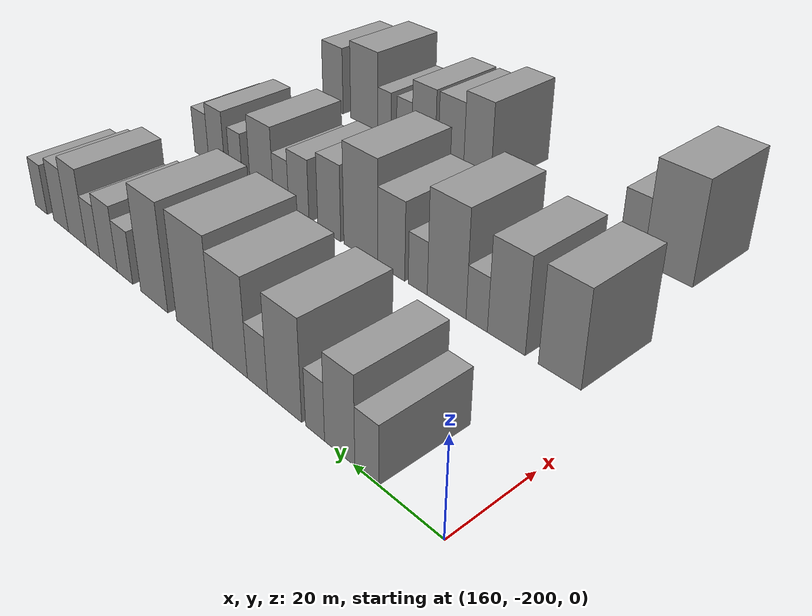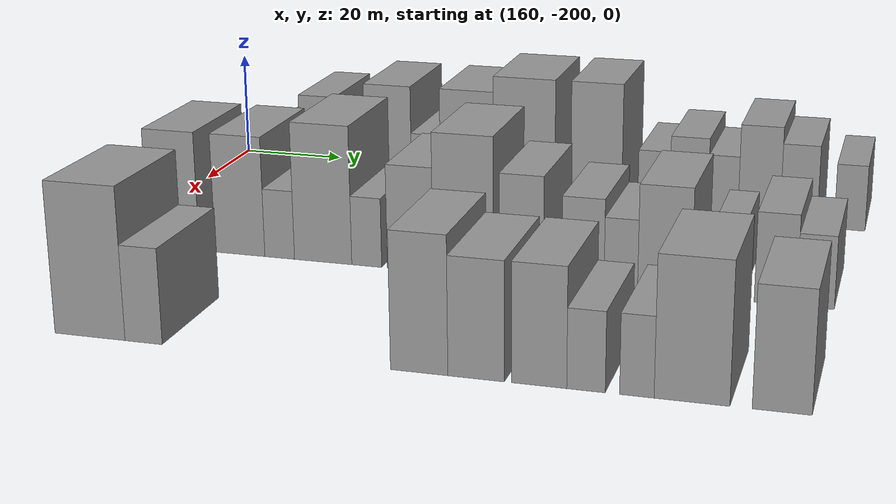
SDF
<sdf version="1.6">
 <world name="default">
  <model name="building_461">
   <static>1</static>
   <pose>170.0000 -183.1782 0 0.000000 0.000000 0.000000</pose>
   <link name="link">
    <pose>0 0 6.00 0 0 0</pose>
    <collision name="collision"><geometry><box><size>20.0000 5.5294 12.0000</size></box></geometry></collision>
    <visual name="visual">
     <cast_shadows>0</cast_shadows>
     <geometry><box><size>20.0000 5.5294 12.0000</size></box></geometry>
     <material>
      <script>
       <uri>model://grey_wall/materials/scripts</uri>
       <uri>model://grey_wall/materials/textures</uri>
       <name>vrc/grey_wall</name>
      </script>
     </material>
    </visual>
   </link>
  </model>
  <model name="building_462">
   <static>1</static>
   <pose>170.0000 -176.7500 0 0.000000 0.000000 0.000000</pose>
   <link name="link">
    <pose>0 0 9.00 0 0 0</pose>
    <collision name="collision"><geometry><box><size>20.0000 7.3270 18.0000</size></box></geometry></collision>
    <visual name="visual">
     <cast_shadows>0</cast_shadows>
     <geometry><box><size>20.0000 7.3270 18.0000</size></box></geometry>
     <material>
      <script>
       <uri>model://grey_wall/materials/scripts</uri>
       <uri>model://grey_wall/materials/textures</uri>
       <name>vrc/grey_wall</name>
      </script>
     </material>
    </visual>
   </link>
  </model>
  <model name="building_463">
   <static>1</static>
   <pose>170.0000 -170.6645 0 0.000000 0.000000 0.000000</pose>
   <link name="link">
    <pose>0 0 6.00 0 0 0</pose>
    <collision name="collision"><geometry><box><size>20.0000 4.8441 12.0000</size></box></geometry></collision>
    <visual name="visual">
     <cast_shadows>0</cast_shadows>
     <geometry><box><size>20.0000 4.8441 12.0000</size></box></geometry>
     <material>
      <script>
       <uri>model://grey_wall/materials/scripts</uri>
       <uri>model://grey_wall/materials/textures</uri>
       <name>vrc/grey_wall</name>
      </script>
     </material>
    </visual>
   </link>
  </model>
  <model name="building_464">
   <static>1</static>
   <pose>170.0000 -162.6236 0 0.000000 0.000000 0.000000</pose>
   <link name="link">
    <pose>0 0 10.50 0 0 0</pose>
    <collision name="collision"><geometry><box><size>20.0000 9.2377 21.0000</size></box></geometry></collision>
    <visual name="visual">
     <cast_shadows>0</cast_shadows>
     <geometry><box><size>20.0000 9.2377 21.0000</size></box></geometry>
     <material>
      <script>
       <uri>model://grey_wall/materials/scripts</uri>
       <uri>model://grey_wall/materials/textures</uri>
       <name>vrc/grey_wall</name>
      </script>
     </material>
    </visual>
   </link>
  </model>
  <model name="building_465">
   <static>1</static>
   <pose>170.0000 -155.1461 0 0.000000 0.000000 0.000000</pose>
   <link name="link">
    <pose>0 0 6.00 0 0 0</pose>
    <collision name="collision"><geometry><box><size>20.0000 5.7173 12.0000</size></box></geometry></collision>
    <visual name="visual">
     <cast_shadows>0</cast_shadows>
     <geometry><box><size>20.0000 5.7173 12.0000</size></box></geometry>
     <material>
      <script>
       <uri>model://grey_wall/materials/scripts</uri>
       <uri>model://grey_wall/materials/textures</uri>
       <name>vrc/grey_wall</name>
      </script>
     </material>
    </visual>
   </link>
  </model>
  <model name="building_466">
   <static>1</static>
   <pose>170.0000 -147.0947 0 0.000000 0.000000 0.000000</pose>
   <link name="link">
    <pose>0 0 10.50 0 0 0</pose>
    <collision name="collision"><geometry><box><size>20.0000 10.3855 21.0000</size></box></geometry></collision>
    <visual name="visual">
     <cast_shadows>0</cast_shadows>
     <geometry><box><size>20.0000 10.3855 21.0000</size></box></geometry>
     <material>
      <script>
       <uri>model://grey_wall/materials/scripts</uri>
       <uri>model://grey_wall/materials/textures</uri>
       <name>vrc/grey_wall</name>
      </script>
     </material>
    </visual>
   </link>
  </model>
  <model name="building_467">
   <static>1</static>
   <pose>170.0000 -135.9889 0 0.000000 0.000000 0.000000</pose>
   <link name="link">
    <pose>0 0 12.00 0 0 0</pose>
    <collision name="collision"><geometry><box><size>20.0000 11.8263 24.0000</size></box></geometry></collision>
    <visual name="visual">
     <cast_shadows>0</cast_shadows>
     <geometry><box><size>20.0000 11.8263 24.0000</size></box></geometry>
     <material>
      <script>
       <uri>model://grey_wall/materials/scripts</uri>
       <uri>model://grey_wall/materials/textures</uri>
       <name>vrc/grey_wall</name>
      </script>
     </material>
    </visual>
   </link>
  </model>
  <model name="building_468">
   <static>1</static>
   <pose>170.0000 -122.2620 0 0.000000 0.000000 0.000000</pose>
   <link name="link">
    <pose>0 0 12.00 0 0 0</pose>
    <collision name="collision"><geometry><box><size>20.0000 9.6274 24.0000</size></box></geometry></collision>
    <visual name="visual">
     <cast_shadows>0</cast_shadows>
     <geometry><box><size>20.0000 9.6274 24.0000</size></box></geometry>
     <material>
      <script>
       <uri>model://grey_wall/materials/scripts</uri>
       <uri>model://grey_wall/materials/textures</uri>
       <name>vrc/grey_wall</name>
      </script>
     </material>
    </visual>
   </link>
  </model>
  <model name="building_469">
   <static>1</static>
   <pose>170.0000 -111.5075 0 0.000000 0.000000 0.000000</pose>
   <link name="link">
    <pose>0 0 6.00 0 0 0</pose>
    <collision name="collision"><geometry><box><size>20.0000 5.8818 12.0000</size></box></geometry></collision>
    <visual name="visual">
     <cast_shadows>0</cast_shadows>
     <geometry><box><size>20.0000 5.8818 12.0000</size></box></geometry>
     <material>
      <script>
       <uri>model://grey_wall/materials/scripts</uri>
       <uri>model://grey_wall/materials/textures</uri>
       <name>vrc/grey_wall</name>
      </script>
     </material>
    </visual>
   </link>
  </model>
  <model name="building_470">
   <static>1</static>
   <pose>170.0000 -105.0584 0 0.000000 0.000000 0.000000</pose>
   <link name="link">
    <pose>0 0 7.50 0 0 0</pose>
    <collision name="collision"><geometry><box><size>20.0000 7.0163 15.0000</size></box></geometry></collision>
    <visual name="visual">
     <cast_shadows>0</cast_shadows>
     <geometry><box><size>20.0000 7.0163 15.0000</size></box></geometry>
     <material>
      <script>
       <uri>model://grey_wall/materials/scripts</uri>
       <uri>model://grey_wall/materials/textures</uri>
       <name>vrc/grey_wall</name>
      </script>
     </material>
    </visual>
   </link>
  </model>
  <model name="building_471">
   <static>1</static>
   <pose>170.0000 -98.8064 0 0.000000 0.000000 0.000000</pose>
   <link name="link">
    <pose>0 0 6.00 0 0 0</pose>
    <collision name="collision"><geometry><box><size>20.0000 5.4877 12.0000</size></box></geometry></collision>
    <visual name="visual">
     <cast_shadows>0</cast_shadows>
     <geometry><box><size>20.0000 5.4877 12.0000</size></box></geometry>
     <material>
      <script>
       <uri>model://grey_wall/materials/scripts</uri>
       <uri>model://grey_wall/materials/textures</uri>
       <name>vrc/grey_wall</name>
      </script>
     </material>
    </visual>
   </link>
  </model>
  <model name="building_472">
   <static>1</static>
   <pose>170.0000 -92.2743 0 0.000000 0.000000 0.000000</pose>
   <link name="link">
    <pose>0 0 9.00 0 0 0</pose>
    <collision name="collision"><geometry><box><size>20.0000 7.5765 18.0000</size></box></geometry></collision>
    <visual name="visual">
     <cast_shadows>0</cast_shadows>
     <geometry><box><size>20.0000 7.5765 18.0000</size></box></geometry>
     <material>
      <script>
       <uri>model://grey_wall/materials/scripts</uri>
       <uri>model://grey_wall/materials/textures</uri>
       <name>vrc/grey_wall</name>
      </script>
     </material>
    </visual>
   </link>
  </model>
  <model name="building_473">
   <static>1</static>
   <pose>170.0000 -85.1839 0 0.000000 0.000000 0.000000</pose>
   <link name="link">
    <pose>0 0 7.50 0 0 0</pose>
    <collision name="collision"><geometry><box><size>20.0000 6.6042 15.0000</size></box></geometry></collision>
    <visual name="visual">
     <cast_shadows>0</cast_shadows>
     <geometry><box><size>20.0000 6.6042 15.0000</size></box></geometry>
     <material>
      <script>
       <uri>model://grey_wall/materials/scripts</uri>
       <uri>model://grey_wall/materials/textures</uri>
       <name>vrc/grey_wall</name>
      </script>
     </material>
    </visual>
   </link>
  </model>
  <model name="building_474">
   <static>1</static>
   <pose>170.0000 -76.1636 0 0.000000 0.000000 0.000000</pose>
   <link name="link">
    <pose>0 0 6.00 0 0 0</pose>
    <collision name="collision"><geometry><box><size>20.0000 5.4364 12.0000</size></box></geometry></collision>
    <visual name="visual">
     <cast_shadows>0</cast_shadows>
     <geometry><box><size>20.0000 5.4364 12.0000</size></box></geometry>
     <material>
      <script>
       <uri>model://grey_wall/materials/scripts</uri>
       <uri>model://grey_wall/materials/textures</uri>
       <name>vrc/grey_wall</name>
      </script>
     </material>
    </visual>
   </link>
  </model>
  <model name="building_593">
   <static>1</static>
   <pose>210.0000 -187.9480 0 0.000000 0.000000 0.000000</pose>
   <link name="link">
    <pose>0 0 10.50 0 0 0</pose>
    <collision name="collision"><geometry><box><size>20.0000 9.4754 21.0000</size></box></geometry></collision>
    <visual name="visual">
     <cast_shadows>0</cast_shadows>
     <geometry><box><size>20.0000 9.4754 21.0000</size></box></geometry>
     <material>
      <script>
       <uri>model://grey_wall/materials/scripts</uri>
       <uri>model://grey_wall/materials/textures</uri>
       <name>vrc/grey_wall</name>
      </script>
     </material>
    </visual>
   </link>
  </model>
  <model name="building_594">
   <static>1</static>
   <pose>210.0000 -175.6614 0 0.000000 0.000000 0.000000</pose>
   <link name="link">
    <pose>0 0 10.50 0 0 0</pose>
    <collision name="collision"><geometry><box><size>20.0000 9.0977 21.0000</size></box></geometry></collision>
    <visual name="visual">
     <cast_shadows>0</cast_shadows>
     <geometry><box><size>20.0000 9.0977 21.0000</size></box></geometry>
     <material>
      <script>
       <uri>model://grey_wall/materials/scripts</uri>
       <uri>model://grey_wall/materials/textures</uri>
       <name>vrc/grey_wall</name>
      </script>
     </material>
    </visual>
   </link>
  </model>
  <model name="building_595">
   <static>1</static>
   <pose>210.0000 -168.4188 0 0.000000 0.000000 0.000000</pose>
   <link name="link">
    <pose>0 0 6.00 0 0 0</pose>
    <collision name="collision"><geometry><box><size>20.0000 5.3875 12.0000</size></box></geometry></collision>
    <visual name="visual">
     <cast_shadows>0</cast_shadows>
     <geometry><box><size>20.0000 5.3875 12.0000</size></box></geometry>
     <material>
      <script>
       <uri>model://grey_wall/materials/scripts</uri>
       <uri>model://grey_wall/materials/textures</uri>
       <name>vrc/grey_wall</name>
      </script>
     </material>
    </visual>
   </link>
  </model>
  <model name="building_596">
   <static>1</static>
   <pose>210.0000 -160.5900 0 0.000000 0.000000 0.000000</pose>
   <link name="link">
    <pose>0 0 12.00 0 0 0</pose>
    <collision name="collision"><geometry><box><size>20.0000 10.2701 24.0000</size></box></geometry></collision>
    <visual name="visual">
     <cast_shadows>0</cast_shadows>
     <geometry><box><size>20.0000 10.2701 24.0000</size></box></geometry>
     <material>
      <script>
       <uri>model://grey_wall/materials/scripts</uri>
       <uri>model://grey_wall/materials/textures</uri>
       <name>vrc/grey_wall</name>
      </script>
     </material>
    </visual>
   </link>
  </model>
  <model name="building_597">
   <static>1</static>
   <pose>210.0000 -152.8083 0 0.000000 0.000000 0.000000</pose>
   <link name="link">
    <pose>0 0 6.00 0 0 0</pose>
    <collision name="collision"><geometry><box><size>20.0000 5.2934 12.0000</size></box></geometry></collision>
    <visual name="visual">
     <cast_shadows>0</cast_shadows>
     <geometry><box><size>20.0000 5.2934 12.0000</size></box></geometry>
     <material>
      <script>
       <uri>model://grey_wall/materials/scripts</uri>
       <uri>model://grey_wall/materials/textures</uri>
       <name>vrc/grey_wall</name>
      </script>
     </material>
    </visual>
   </link>
  </model>
  <model name="building_598">
   <static>1</static>
   <pose>210.0000 -145.1901 0 0.000000 0.000000 0.000000</pose>
   <link name="link">
    <pose>0 0 9.00 0 0 0</pose>
    <collision name="collision"><geometry><box><size>20.0000 7.9430 18.0000</size></box></geometry></collision>
    <visual name="visual">
     <cast_shadows>0</cast_shadows>
     <geometry><box><size>20.0000 7.9430 18.0000</size></box></geometry>
     <material>
      <script>
       <uri>model://grey_wall/materials/scripts</uri>
       <uri>model://grey_wall/materials/textures</uri>
       <name>vrc/grey_wall</name>
      </script>
     </material>
    </visual>
   </link>
  </model>
  <model name="building_599">
   <static>1</static>
   <pose>210.0000 -136.0302 0 0.000000 0.000000 0.000000</pose>
   <link name="link">
    <pose>0 0 12.00 0 0 0</pose>
    <collision name="collision"><geometry><box><size>20.0000 10.3767 24.0000</size></box></geometry></collision>
    <visual name="visual">
     <cast_shadows>0</cast_shadows>
     <geometry><box><size>20.0000 10.3767 24.0000</size></box></geometry>
     <material>
      <script>
       <uri>model://grey_wall/materials/scripts</uri>
       <uri>model://grey_wall/materials/textures</uri>
       <name>vrc/grey_wall</name>
      </script>
     </material>
    </visual>
   </link>
  </model>
  <model name="building_600">
   <static>1</static>
   <pose>210.0000 -126.0972 0 0.000000 0.000000 0.000000</pose>
   <link name="link">
    <pose>0 0 9.00 0 0 0</pose>
    <collision name="collision"><geometry><box><size>20.0000 7.4893 18.0000</size></box></geometry></collision>
    <visual name="visual">
     <cast_shadows>0</cast_shadows>
     <geometry><box><size>20.0000 7.4893 18.0000</size></box></geometry>
     <material>
      <script>
       <uri>model://grey_wall/materials/scripts</uri>
       <uri>model://grey_wall/materials/textures</uri>
       <name>vrc/grey_wall</name>
      </script>
     </material>
    </visual>
   </link>
  </model>
  <model name="building_601">
   <static>1</static>
   <pose>210.0000 -115.8443 0 0.000000 0.000000 0.000000</pose>
   <link name="link">
    <pose>0 0 7.50 0 0 0</pose>
    <collision name="collision"><geometry><box><size>20.0000 7.0165 15.0000</size></box></geometry></collision>
    <visual name="visual">
     <cast_shadows>0</cast_shadows>
     <geometry><box><size>20.0000 7.0165 15.0000</size></box></geometry>
     <material>
      <script>
       <uri>model://grey_wall/materials/scripts</uri>
       <uri>model://grey_wall/materials/textures</uri>
       <name>vrc/grey_wall</name>
      </script>
     </material>
    </visual>
   </link>
  </model>
  <model name="building_602">
   <static>1</static>
   <pose>210.0000 -109.5901 0 0.000000 0.000000 0.000000</pose>
   <link name="link">
    <pose>0 0 6.00 0 0 0</pose>
    <collision name="collision"><geometry><box><size>20.0000 5.4920 12.0000</size></box></geometry></collision>
    <visual name="visual">
     <cast_shadows>0</cast_shadows>
     <geometry><box><size>20.0000 5.4920 12.0000</size></box></geometry>
     <material>
      <script>
       <uri>model://grey_wall/materials/scripts</uri>
       <uri>model://grey_wall/materials/textures</uri>
       <name>vrc/grey_wall</name>
      </script>
     </material>
    </visual>
   </link>
  </model>
  <model name="building_603">
   <static>1</static>
   <pose>210.0000 -102.4994 0 0.000000 0.000000 0.000000</pose>
   <link name="link">
    <pose>0 0 9.00 0 0 0</pose>
    <collision name="collision"><geometry><box><size>20.0000 8.6893 18.0000</size></box></geometry></collision>
    <visual name="visual">
     <cast_shadows>0</cast_shadows>
     <geometry><box><size>20.0000 8.6893 18.0000</size></box></geometry>
     <material>
      <script>
       <uri>model://grey_wall/materials/scripts</uri>
       <uri>model://grey_wall/materials/textures</uri>
       <name>vrc/grey_wall</name>
      </script>
     </material>
    </visual>
   </link>
  </model>
  <model name="building_604">
   <static>1</static>
   <pose>210.0000 -92.6704 0 0.000000 0.000000 0.000000</pose>
   <link name="link">
    <pose>0 0 6.00 0 0 0</pose>
    <collision name="collision"><geometry><box><size>20.0000 4.9688 12.0000</size></box></geometry></collision>
    <visual name="visual">
     <cast_shadows>0</cast_shadows>
     <geometry><box><size>20.0000 4.9688 12.0000</size></box></geometry>
     <material>
      <script>
       <uri>model://grey_wall/materials/scripts</uri>
       <uri>model://grey_wall/materials/textures</uri>
       <name>vrc/grey_wall</name>
      </script>
     </material>
    </visual>
   </link>
  </model>
  <model name="building_605">
   <static>1</static>
   <pose>210.0000 -84.8742 0 0.000000 0.000000 0.000000</pose>
   <link name="link">
    <pose>0 0 7.50 0 0 0</pose>
    <collision name="collision"><geometry><box><size>20.0000 6.6235 15.0000</size></box></geometry></collision>
    <visual name="visual">
     <cast_shadows>0</cast_shadows>
     <geometry><box><size>20.0000 6.6235 15.0000</size></box></geometry>
     <material>
      <script>
       <uri>model://grey_wall/materials/scripts</uri>
       <uri>model://grey_wall/materials/textures</uri>
       <name>vrc/grey_wall</name>
      </script>
     </material>
    </visual>
   </link>
  </model>
  <model name="building_606">
   <static>1</static>
   <pose>210.0000 -78.6387 0 0.000000 0.000000 0.000000</pose>
   <link name="link">
    <pose>0 0 6.00 0 0 0</pose>
    <collision name="collision"><geometry><box><size>20.0000 5.8475 12.0000</size></box></geometry></collision>
    <visual name="visual">
     <cast_shadows>0</cast_shadows>
     <geometry><box><size>20.0000 5.8475 12.0000</size></box></geometry>
     <material>
      <script>
       <uri>model://grey_wall/materials/scripts</uri>
       <uri>model://grey_wall/materials/textures</uri>
       <name>vrc/grey_wall</name>
      </script>
     </material>
    </visual>
   </link>
  </model>
  <model name="building_740">
   <static>1</static>
   <pose>250.0000 -182.3275 0 0.000000 0.000000 0.000000</pose>
   <link name="link">
    <pose>0 0 12.00 0 0 0</pose>
    <collision name="collision"><geometry><box><size>20.0000 11.5637 24.0000</size></box></geometry></collision>
    <visual name="visual">
     <cast_shadows>0</cast_shadows>
     <geometry><box><size>20.0000 11.5637 24.0000</size></box></geometry>
     <material>
      <script>
       <uri>model://grey_wall/materials/scripts</uri>
       <uri>model://grey_wall/materials/textures</uri>
       <name>vrc/grey_wall</name>
      </script>
     </material>
    </visual>
   </link>
  </model>
  <model name="building_741">
   <static>1</static>
   <pose>250.0000 -173.5265 0 0.000000 0.000000 0.000000</pose>
   <link name="link">
    <pose>0 0 7.50 0 0 0</pose>
    <collision name="collision"><geometry><box><size>20.0000 6.0384 15.0000</size></box></geometry></collision>
    <visual name="visual">
     <cast_shadows>0</cast_shadows>
     <geometry><box><size>20.0000 6.0384 15.0000</size></box></geometry>
     <material>
      <script>
       <uri>model://grey_wall/materials/scripts</uri>
       <uri>model://grey_wall/materials/textures</uri>
       <name>vrc/grey_wall</name>
      </script>
     </material>
    </visual>
   </link>
  </model>
  <model name="building_742">
   <static>1</static>
   <pose>250.0000 -130.6956 0 0.000000 0.000000 0.000000</pose>
   <link name="link">
    <pose>0 0 10.50 0 0 0</pose>
    <collision name="collision"><geometry><box><size>20.0000 8.5411 21.0000</size></box></geometry></collision>
    <visual name="visual">
     <cast_shadows>0</cast_shadows>
     <geometry><box><size>20.0000 8.5411 21.0000</size></box></geometry>
     <material>
      <script>
       <uri>model://grey_wall/materials/scripts</uri>
       <uri>model://grey_wall/materials/textures</uri>
       <name>vrc/grey_wall</name>
      </script>
     </material>
    </visual>
   </link>
  </model>
  <model name="building_743">
   <static>1</static>
   <pose>250.0000 -122.2903 0 0.000000 0.000000 0.000000</pose>
   <link name="link">
    <pose>0 0 9.00 0 0 0</pose>
    <collision name="collision"><geometry><box><size>20.0000 8.2694 18.0000</size></box></geometry></collision>
    <visual name="visual">
     <cast_shadows>0</cast_shadows>
     <geometry><box><size>20.0000 8.2694 18.0000</size></box></geometry>
     <material>
      <script>
       <uri>model://grey_wall/materials/scripts</uri>
       <uri>model://grey_wall/materials/textures</uri>
       <name>vrc/grey_wall</name>
      </script>
     </material>
    </visual>
   </link>
  </model>
  <model name="building_744">
   <static>1</static>
   <pose>250.0000 -113.1818 0 0.000000 0.000000 0.000000</pose>
   <link name="link">
    <pose>0 0 9.00 0 0 0</pose>
    <collision name="collision"><geometry><box><size>20.0000 7.9476 18.0000</size></box></geometry></collision>
    <visual name="visual">
     <cast_shadows>0</cast_shadows>
     <geometry><box><size>20.0000 7.9476 18.0000</size></box></geometry>
     <material>
      <script>
       <uri>model://grey_wall/materials/scripts</uri>
       <uri>model://grey_wall/materials/textures</uri>
       <name>vrc/grey_wall</name>
      </script>
     </material>
    </visual>
   </link>
  </model>
  <model name="building_745">
   <static>1</static>
   <pose>250.0000 -106.4795 0 0.000000 0.000000 0.000000</pose>
   <link name="link">
    <pose>0 0 6.00 0 0 0</pose>
    <collision name="collision"><geometry><box><size>20.0000 5.4569 12.0000</size></box></geometry></collision>
    <visual name="visual">
     <cast_shadows>0</cast_shadows>
     <geometry><box><size>20.0000 5.4569 12.0000</size></box></geometry>
     <material>
      <script>
       <uri>model://grey_wall/materials/scripts</uri>
       <uri>model://grey_wall/materials/textures</uri>
       <name>vrc/grey_wall</name>
      </script>
     </material>
    </visual>
   </link>
  </model>
  <model name="building_746">
   <static>1</static>
   <pose>250.0000 -99.3427 0 0.000000 0.000000 0.000000</pose>
   <link name="link">
    <pose>0 0 6.00 0 0 0</pose>
    <collision name="collision"><geometry><box><size>20.0000 4.8167 12.0000</size></box></geometry></collision>
    <visual name="visual">
     <cast_shadows>0</cast_shadows>
     <geometry><box><size>20.0000 4.8167 12.0000</size></box></geometry>
     <material>
      <script>
       <uri>model://grey_wall/materials/scripts</uri>
       <uri>model://grey_wall/materials/textures</uri>
       <name>vrc/grey_wall</name>
      </script>
     </material>
    </visual>
   </link>
  </model>
  <model name="building_747">
   <static>1</static>
   <pose>250.0000 -91.7367 0 0.000000 0.000000 0.000000</pose>
   <link name="link">
    <pose>0 0 10.50 0 0 0</pose>
    <collision name="collision"><geometry><box><size>20.0000 10.3954 21.0000</size></box></geometry></collision>
    <visual name="visual">
     <cast_shadows>0</cast_shadows>
     <geometry><box><size>20.0000 10.3954 21.0000</size></box></geometry>
     <material>
      <script>
       <uri>model://grey_wall/materials/scripts</uri>
       <uri>model://grey_wall/materials/textures</uri>
       <name>vrc/grey_wall</name>
      </script>
     </material>
    </visual>
   </link>
  </model>
  <model name="building_748">
   <static>1</static>
   <pose>250.0000 -79.5216 0 0.000000 0.000000 0.000000</pose>
   <link name="link">
    <pose>0 0 9.00 0 0 0</pose>
    <collision name="collision"><geometry><box><size>20.0000 8.0347 18.0000</size></box></geometry></collision>
    <visual name="visual">
     <cast_shadows>0</cast_shadows>
     <geometry><box><size>20.0000 8.0347 18.0000</size></box></geometry>
     <material>
      <script>
       <uri>model://grey_wall/materials/scripts</uri>
       <uri>model://grey_wall/materials/textures</uri>
       <name>vrc/grey_wall</name>
      </script>
     </material>
    </visual>
   </link>
  </model>
 </world>
</sdf>
